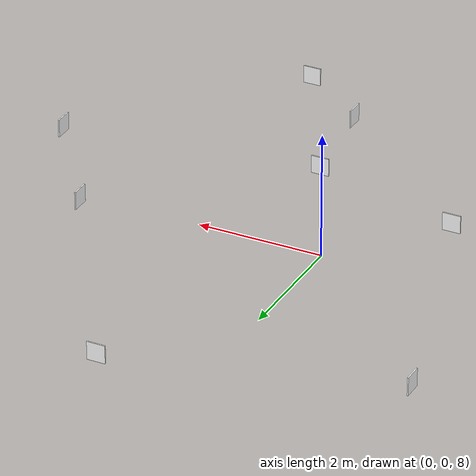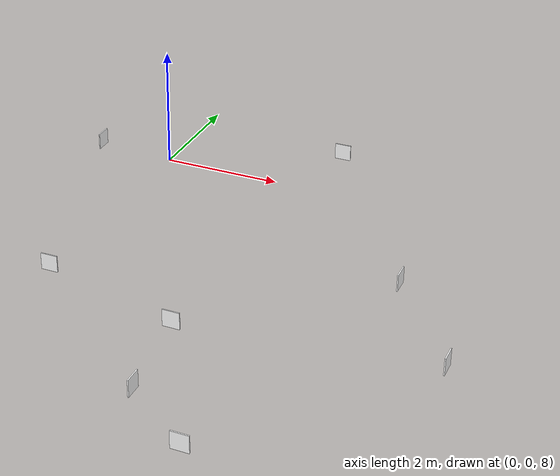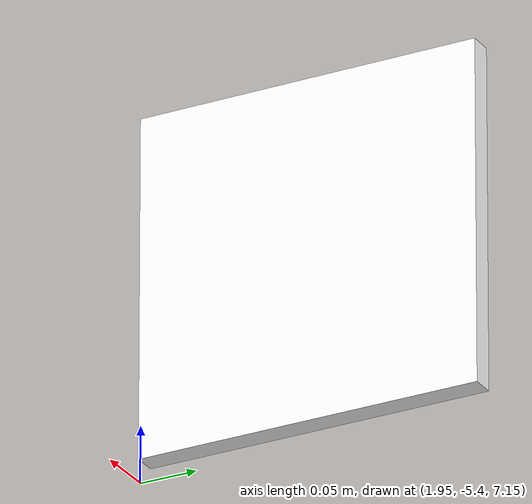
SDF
<?xml version="1.0" encoding="UTF-8"?>
<sdf version="1.9">
  <model name="posAprilTags">

    <!-- fridge -->
    <model name="tag_0">
      <pose>1.75 -3.535 7.3 1.57079 1.57079 0</pose>
      <static>true</static>
      <link name="link">
        <visual name="visual">
          <geometry>
            <box>
              <size>0.3 0.3 0.02</size>
            </box>
          </geometry>
          <material>
            <diffuse>1 1 1 1</diffuse>
            <specular>0.4 0.4 0.4 1</specular>
            <pbr>
              <metal>
                <albedo_map>materials/textures/tag36_11_00000.png</albedo_map>
                <double_sided>true</double_sided>
              </metal>
            </pbr>
          </material>
        </visual>
      </link>
    </model>

    <!-- back glass door -->
    <model name="tag_1">
      <pose>2.2 2.835 7.3 -1.57079 1.57079 0</pose>
      <static>true</static>
      <link name="link">
        <visual name="visual">
          <geometry>
            <box>
              <size>0.3 0.3 0.02</size>
            </box>
          </geometry>
          <material>
            <diffuse>1 1 1 1</diffuse>
            <specular>0.4 0.4 0.4 1</specular>
            <pbr>
              <metal>
                <albedo_map>materials/textures/tag36_11_00001.png</albedo_map>
                <double_sided>true</double_sided>
              </metal>
            </pbr>
          </material>
        </visual>
      </link>
    </model>

    <!-- window -->
    <model name="tag_2">
      <pose>5.935 -2.89 7.3 0 1.57079 0</pose>
      <static>true</static>
      <link name="link">
        <visual name="visual">
          <geometry>
            <box>
              <size>0.3 0.3 0.02</size>
            </box>
          </geometry>
          <material>
            <diffuse>1 1 1 1</diffuse>
            <specular>0.4 0.4 0.4 1</specular>
            <pbr>
              <metal>
                <albedo_map>materials/textures/tag36_11_00002.png</albedo_map>
                <double_sided>true</double_sided>
              </metal>
            </pbr>
          </material>
        </visual>
      </link>
    </model>

    <!-- kitchen -->
    <model name="tag_3">
      <pose>3.17 -6.14 7.3 1.57079 1.57079 0</pose>
      <static>true</static>
      <link name="link">
        <visual name="visual">
          <geometry>
            <box>
              <size>0.3 0.3 0.02</size>
            </box>
          </geometry>
          <material>
            <diffuse>1 1 1 1</diffuse>
            <specular>0.4 0.4 0.4 1</specular>
            <pbr>
              <metal>
                <albedo_map>materials/textures/tag36_11_00003.png</albedo_map>
                <double_sided>true</double_sided>
              </metal>
            </pbr>
          </material>
        </visual>
      </link>
    </model>

    <!-- back door -->
    <model name="tag_4">
      <pose>-2.18 1.5 7.3 3.14158 1.57079 0</pose>
      <static>true</static>
      <link name="link">
        <visual name="visual">
          <geometry>
            <box>
              <size>0.3 0.3 0.02</size>
            </box>
          </geometry>
          <material>
            <diffuse>1 1 1 1</diffuse>
            <specular>0.4 0.4 0.4 1</specular>
            <pbr>
              <metal>
                <albedo_map>materials/textures/tag36_11_00004.png</albedo_map>
                <double_sided>true</double_sided>
              </metal>
            </pbr>
          </material>
        </visual>
      </link>
    </model>

    <!-- piano -->
    <model name="tag_5">
      <pose>4.59 -1 7.3 0 1.57079 0</pose>
      <static>true</static>
      <link name="link">
        <visual name="visual">
          <geometry>
            <box>
              <size>0.3 0.3 0.02</size>
            </box>
          </geometry>
          <material>
            <diffuse>1 1 1 1</diffuse>
            <specular>0.4 0.4 0.4 1</specular>
            <pbr>
              <metal>
                <albedo_map>materials/textures/tag36_11_00005.png</albedo_map>
                <double_sided>true</double_sided>
              </metal>
            </pbr>
          </material>
        </visual>
      </link>
    </model>

    <!-- front door -->
    <model name="tag_6">
      <pose>-0.8 -2.85 7.3 1.57079 1.57079 0</pose>
      <static>true</static>
      <link name="link">
        <visual name="visual">
          <geometry>
            <box>
              <size>0.3 0.3 0.02</size>
            </box>
          </geometry>
          <material>
            <diffuse>1 1 1 1</diffuse>
            <specular>0.4 0.4 0.4 1</specular>
            <pbr>
              <metal>
                <albedo_map>materials/textures/tag36_11_00006.png</albedo_map>
                <double_sided>true</double_sided>
              </metal>
            </pbr>
          </material>
        </visual>
      </link>
    </model>

    <model name="tag_7">
      <pose>1.98 -5.23 7.3 3.14158 1.57079 0</pose>
      <static>true</static>
      <link name="link">
        <visual name="visual">
          <geometry>
            <box>
              <size>0.3 0.3 0.02</size>
            </box>
          </geometry>
          <material>
            <diffuse>1 1 1 1</diffuse>
            <specular>0.4 0.4 0.4 1</specular>
            <pbr>
              <metal>
                <albedo_map>materials/textures/tag36_11_00007.png</albedo_map>
                <double_sided>true</double_sided>
              </metal>
            </pbr>
          </material>
        </visual>
      </link>
    </model>

  </model>
</sdf>
